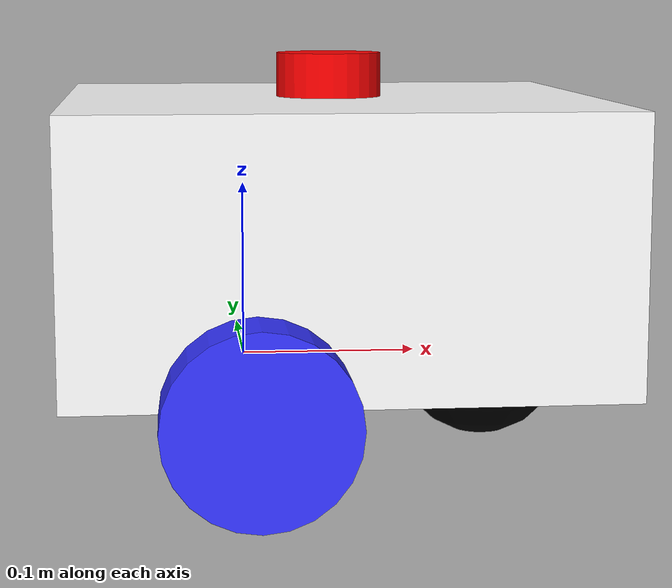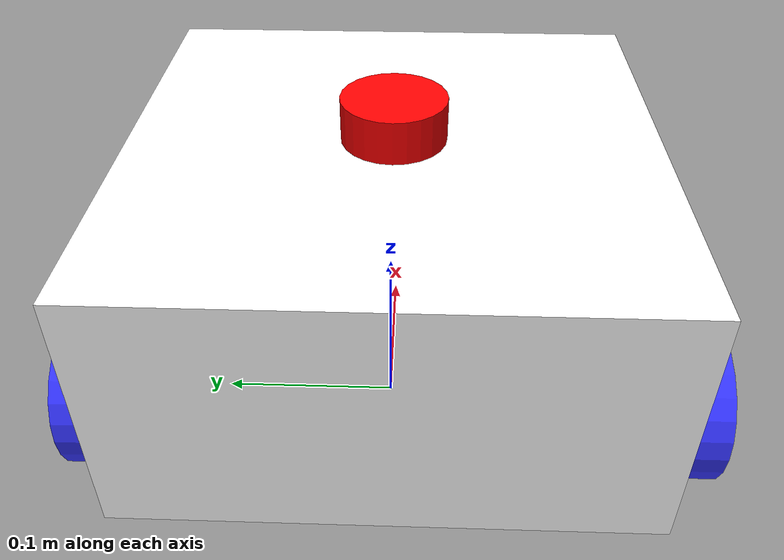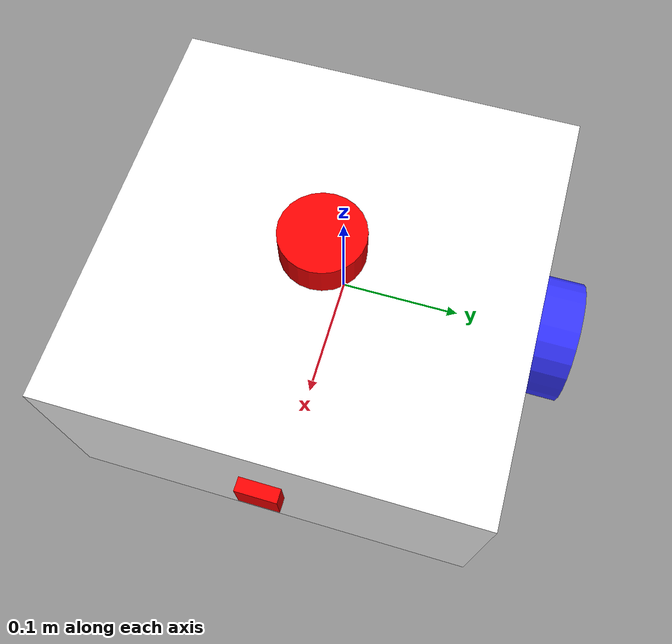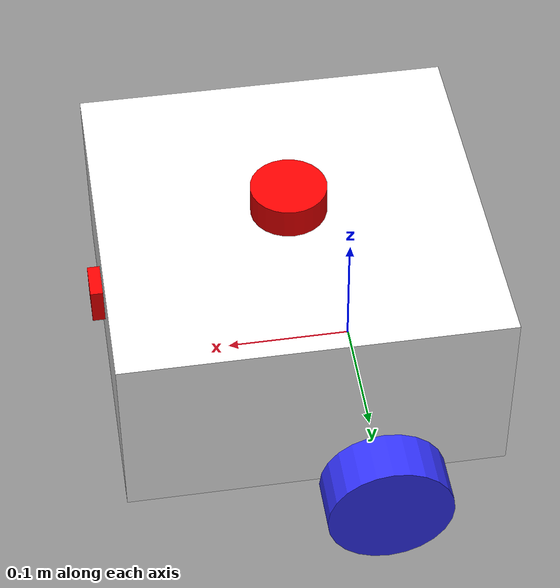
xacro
<?xml version="1.0"?>
<robot xmlns:xacro="http://www.ros.org/wiki/xacro"  name="robot">

    <!-- ROBOT URDF -->

    <xacro:include filename='robot_core.xacro' />

    <!-- GAZEBO PLUGIN -->
    <xacro:include filename='gazebo_control.xacro'/>
    <xacro:include filename='lidar.xacro'/>
    <xacro:include filename='camera.xacro' />
</robot>

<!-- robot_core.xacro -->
<robot xmlns:xacro="http://www.ros.org/wiki/xacro" >

    <xacro:include filename="inertial_macros.xacro"/>

    <material name="white">
        <color rgba="1 1 1 1" />
    </material>

    <material name="orange">
        <color rgba="1 0.3 0.1 1"/>
    </material>

    <material name="blue">
        <color rgba="0.2 0.2 1 1"/>
    </material>

    <material name="black">
        <color rgba="0 0 0 1"/>
    </material>

    <material name="red">
        <color rgba="1 0 0 1"/>
    </material>
    <!-- BASE LINK -->

    <link name="base_link">

    </link>

    <!-- BASE_FOOTPRINT -->

    <joint name="base_footprint_joint" type="fixed">
        <parent link="base_link"/>
        <child link="base_footprint"/>
        <origin xyz="0 0 0"/>
    </joint>

    <link name="base_footprint">

    </link>

    <!-- CHASSIS LINK -->

    <joint name="chassis_joint" type="fixed">
        <parent link="base_link"/>
        <child link="chassis"/>
        <origin xyz="-0.1 0 0"/>
    </joint>

    <link name="chassis">
        <visual>
            <origin xyz="0.15 0 0.075"/>
            <geometry>
                <box size="0.3 0.3 0.15"/>
            </geometry>
            <material name="white"/>
        </visual>
        <collision>
            <origin xyz="0.15 0 0.075"/>
            <geometry>
                <box size="0.3 0.3 0.15"/>
            </geometry>
        </collision>
        <xacro:inertial_box mass="0.5" x="0.3" y="0.3" z="0.15">
            <origin xyz="0.15 0 0.075" rpy="0 0 0"/>
        </xacro:inertial_box>
    </link>

    <gazebo reference="chassis">
        <material>Gazebo/White</material>
    </gazebo>

    <!-- LEFT WHEEL LINK -->

    <joint name="left_wheel_joint" type="continuous">
        <parent link="base_link"/>
        <child link="left_wheel"/>
        <origin xyz="0 0.175 0" rpy="-${pi/2} 0 0" />
        <axis xyz="0 0 1"/>
    </joint>

    <link name="left_wheel">
        <visual>
            <geometry>
                <cylinder radius="0.05" length="0.04"/>
            </geometry>
            <material name="blue"/>
        </visual>
        <collision>
            <geometry>
                <cylinder radius="0.05" length="0.04"/>
            </geometry>
        </collision>
        <xacro:inertial_cylinder mass="0.1" length="0.04" radius="0.05">
            <origin xyz="0 0 0" rpy="0 0 0"/>
        </xacro:inertial_cylinder>
    </link>

    <gazebo reference="left_wheel">
        <material>Gazebo/Blue</material>
    </gazebo>

    <!-- RIGHT WHEEL LINK -->

    <joint name="right_wheel_joint" type="continuous">
        <parent link="base_link"/>
        <child link="right_wheel"/>
        <origin xyz="0 -0.175 0" rpy="${pi/2} 0 0" />
        <axis xyz="0 0 -1"/>
    </joint>

    <link name="right_wheel">
        <visual>
            <geometry>
                <cylinder radius="0.05" length="0.04"/>
            </geometry>
            <material name="blue"/>
        </visual>
        <collision>
            <geometry>
                <cylinder radius="0.05" length="0.04"/>
            </geometry>
        </collision>
        <xacro:inertial_cylinder mass="0.1" length="0.04" radius="0.05">
            <origin xyz="0 0 0" rpy="0 0 0"/>
        </xacro:inertial_cylinder>
    </link>

    <gazebo reference="right_wheel">
        <material>Gazebo/Blue</material>
    </gazebo>

    <!-- CASTER WHEEL LINK -->

    <joint name="caster_wheel_joint" type="fixed">
        <parent link="chassis"/>
        <child link="caster_wheel"/>
        <origin xyz="0.24 0 0"/>
    </joint>

    <link name="caster_wheel">
        <visual>
            <geometry>
                <sphere radius="0.05"/>
            </geometry>
            <material name="black"/>
        </visual>
        <collision>
            <geometry>
                <sphere radius="0.05"/>
            </geometry>
        </collision>
        <xacro:inertial_sphere mass="0.1" radius="0.05">
            <origin xyz="0 0 0" rpy="0 0 0"/>
        </xacro:inertial_sphere>
    </link>

    <gazebo reference="caster_wheel">
        <material>Gazebo/Black</material>
        <mu1 value="0.001"/>
        <mu2 value="0.001"/>
    </gazebo>

</robot>

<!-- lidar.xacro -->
<robot xmlns:xacro="http://www.ros.org/wiki/xacro" >

        <!-- LIDAR JOINT -->
    <joint name="laser_joint" type="fixed">
        <parent link="chassis"/> <!-- or base_link -->
        <child link="laser_frame"/>
        <origin xyz="0.15 0 0.15" rpy="0 0 0"/>
    </joint>

    <!-- LIDAR LINK -->

    <link name="laser_frame">
        <visual>
            <geometry>
                <cylinder length="0.05" radius="0.03"/>
            </geometry>
            <origin xyz="0 0 0" rpy="0 0 0"/>
            <material name="red"/>
        </visual>
        <collision>
            <geometry>
                <cylinder length="0.05" radius="0.03"/>
            </geometry>
            <origin xyz="0 0 0" rpy="0 0 0"/>
        </collision>
        <inertial>
            <mass value="0.1"/>
            <origin xyz="0 0 0" rpy="0 0 0"/>
            <inertia ixx="0.0001" ixy="0.0" ixz="0.0" iyy="0.0001" iyz="0.0" izz="0.0001"/>
        </inertial>
    </link>

    <gazebo reference='laser_frame'>
        <material>Gazebo/Red</material>
        <sensor name="laser" type='ray'>
            <pose>0 0 0 0 0 0</pose>
            <visualize>true</visualize>
            <update_rate>10</update_rate>
            <ray>
                <scan>
                    <horizontal>
                        <samples>360</samples>
                        <resolution>1</resolution>
                        <min_angle>-3.14</min_angle>
                        <max_angle>3.14</max_angle>
                    </horizontal>
                </scan>
                <range>
                    <min>0.3</min>
                    <max>5</max>
                    <resolution>0.01</resolution>
                </range>
            </ray>
            <plugin name="laser_controller" filename="libgazebo_ros_ray_sensor.so">
                <ros>
                    <remapping>~/out:=scan</remapping>
                </ros>
                <output_type>sensor_msgs/LaserScan</output_type>
                <frame_name>laser_frame</frame_name>
            </plugin>

        </sensor>
    </gazebo>

</robot>

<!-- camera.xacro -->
<robot xmlns:xacro="http://www.ros.org/wiki/xacro" >

        <!-- CAMERA JOINT -->
    <joint name="camera_joint" type="fixed">
        <parent link="chassis"/> <!-- or base_link -->
        <child link="camera_link"/>
        <origin xyz="0.305 0 0.08" rpy="0 0 0"/>
    </joint>

    <link name="camera_link">
        <visual>
            <geometry>
                <box size="0.010 0.03 0.03"/>
            </geometry>
            <origin xyz="0 0 0" rpy="0 0 0"/>
            <material name="red"/>
        </visual>
    </link>

    <joint name="camera_optical_joint" type="fixed">
        <parent link="camera_link"/> <!-- or base_link -->
        <child link="camera_link_optical"/>
        <origin xyz="0 0 0" rpy="${-pi/2} 0 ${-pi/2} "/>
    </joint>

    <link name="camera_link_optical"></link>

    <gazebo reference='camera_link'>
        <material>Gazebo/Red</material>
        <sensor name="camera" type='camera'>
            <pose>0 0 0 0 0 0</pose>
            <visualize>true</visualize>
            <update_rate>10</update_rate>
            <camera>
                <horizontal_fov>1.089</horizontal_fov>
                <image>
                    <format>R8G8B8</format>
                    <width>640</width>
                    <height>480</height>
                </image>

                <clip>
                    <near>0.05</near>
                    <far>8.0</far>
                </clip>
            </camera>
            <plugin name="camera_controller" filename="libgazebo_ros_camera.so">
                <frame_name>camera_link_optical</frame_name>
            </plugin>
        </sensor>
    </gazebo>

</robot>
